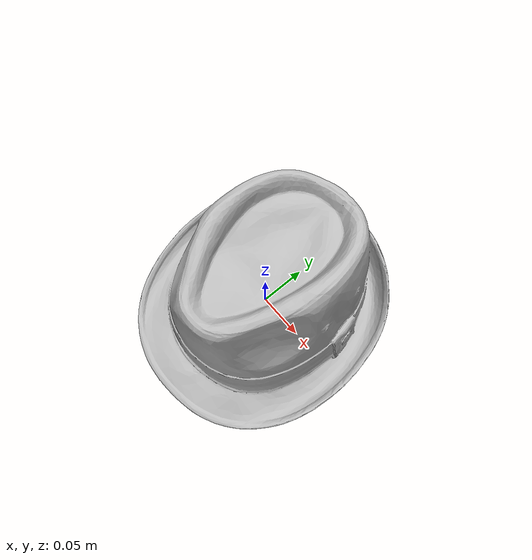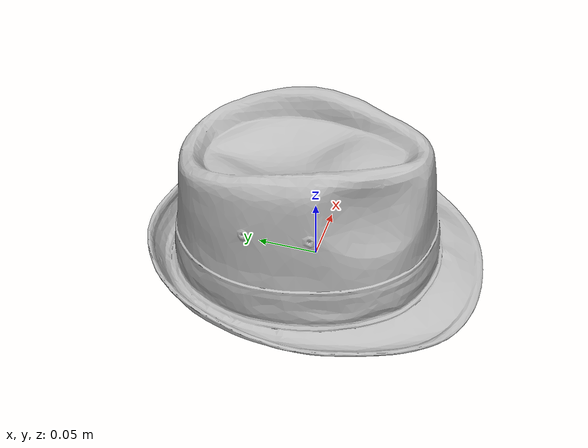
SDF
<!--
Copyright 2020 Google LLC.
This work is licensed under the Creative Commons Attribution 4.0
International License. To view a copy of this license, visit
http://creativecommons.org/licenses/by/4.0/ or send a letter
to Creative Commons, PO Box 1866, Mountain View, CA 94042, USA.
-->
<?xml version="1.0" ?>
<sdf version="1.6">
    <model name="Retail_Leadership_Summit_eCT3zqHYIkX">
        <link name="link_0">
            <visual name="visual">
                <geometry>
                    <mesh>
                        <uri>meshes/model.obj</uri>
                    </mesh>
                </geometry>
            </visual>
            <collision name="collision_0">
                <geometry>
                    <mesh>
                        <uri>meshes/model.obj</uri>
                    </mesh>
                </geometry>
            </collision>
        </link>
    </model>
</sdf>
